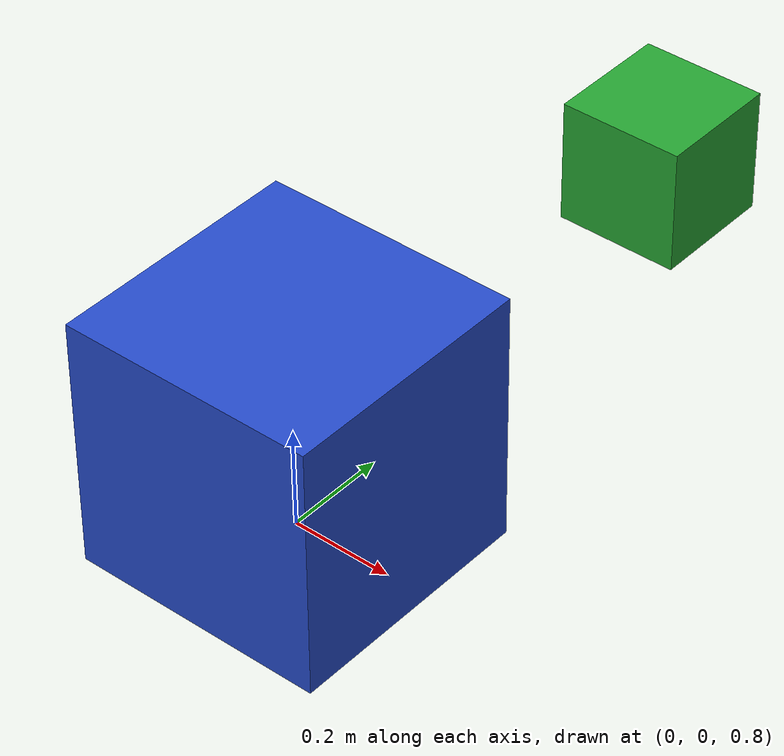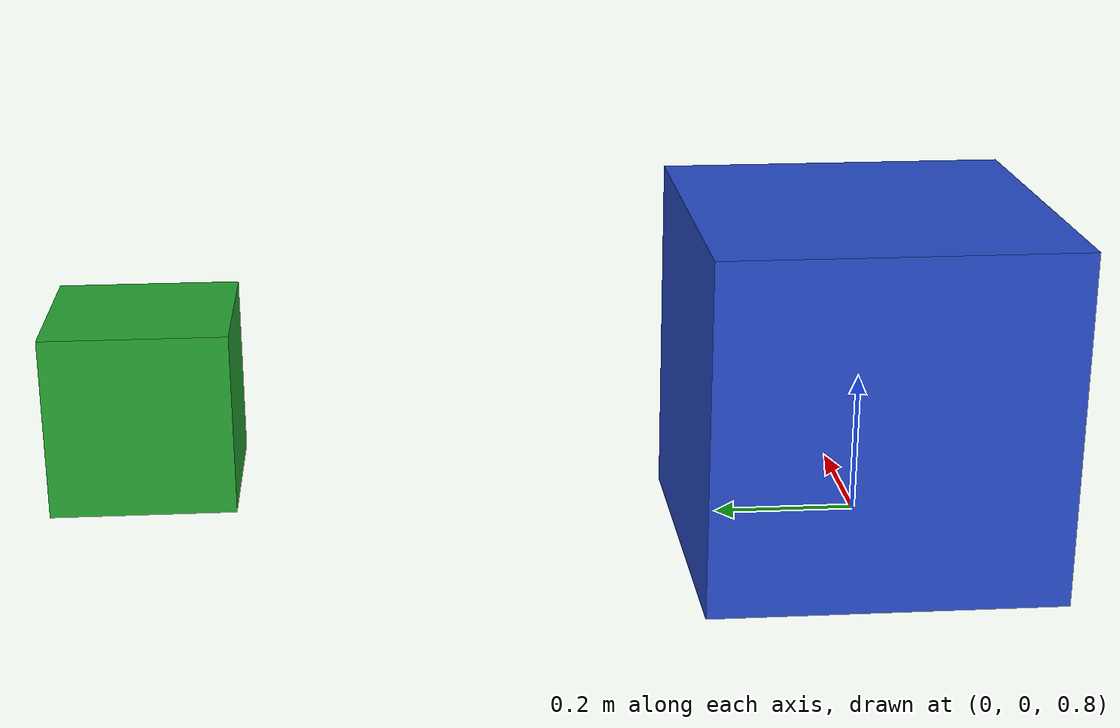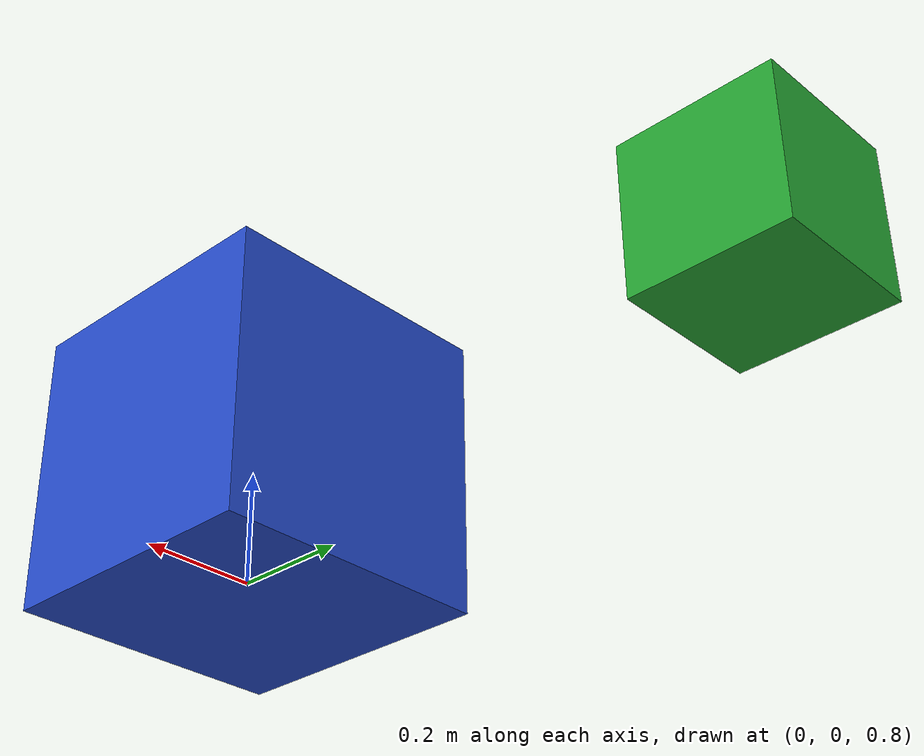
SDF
<?xml version='1.0'?>
<sdf version='1.6'>
  <model name='primitive_object'>
      <pose>0.0 0.0 1 0 0 0</pose>
      <link name='base_link'>
        <inertial>
          <mass>0.1</mass>
          <inertia>
            <ixx>0.1</ixx>
            <ixy>0</ixy>
            <ixz>0</ixz>
            <iyy>0.1</iyy>
            <iyz>0</iyz>
            <izz>0.1</izz>
          </inertia>
          <pose>0 0 0 0 -0 0</pose>
        </inertial>
        <collision name='collision'>
          <geometry>
            <box>
              <size>0.5 0.5 0.5</size>
            </box>
          </geometry>
          <max_contacts>10</max_contacts>
          <surface>
            <contact>
              <ode/>
            </contact>
            <bounce/>
            <friction>
              <torsional>
                <ode/>
              </torsional>
              <ode/>
            </friction>
          </surface>
        </collision>
        <visual name='visual'>
          <geometry>
            <box>
              <size>0.5 0.5 0.5</size>
            </box>
          </geometry>
          <material>
            <script>
              <name>Gazebo/Blue</name>
              <uri>file://media/materials/scripts/gazebo.material</uri>
            </script>
          </material>
        </visual>
        <self_collide>0</self_collide>
        <enable_gravity>1</enable_gravity>
        <kinematic>0</kinematic>
      </link>
      <link name='side_link'>
        <pose>0 1 0 0 0 0</pose>
        <inertial>
          <mass>1e-9</mass>
          <inertia>
            <ixx>1e-9</ixx>
            <ixy>0</ixy>
            <ixz>0</ixz>
            <iyy>1e-9</iyy>
            <iyz>0</iyz>
            <izz>1e-9</izz>
          </inertia>
        </inertial>
        <collision name='collision'>
          <geometry>
            <box>
              <size>0.25 0.25 0.25</size>
            </box>
          </geometry>
        </collision>
        <visual name='visual'>
          <geometry>
            <box>
              <size>0.25 0.25 0.25</size>
            </box>
          </geometry>
          <material>
            <script>
              <name>Gazebo/Green</name>
              <uri>file://media/materials/scripts/gazebo.material</uri>
            </script>
          </material>
        </visual>
      </link>
      <joint name='side_joint' type='fixed'>
        <child>side_link</child>
        <parent>base_link</parent>
      </joint>
      <static>false</static>
      <plugin name='basic_object_imu_plugin' filename='libgymfc_gazebo_imu_plugin.so'>
        <robotNamespace></robotNamespace>
        <linkName>base_link</linkName>
        <imuTopic>/imu</imuTopic>
        <gyroscopeNoiseDensity>0.00018665</gyroscopeNoiseDensity>
        <gyroscopeRandomWalk>3.8785e-05</gyroscopeRandomWalk>
        <gyroscopeBiasCorrelationTime>1000.0</gyroscopeBiasCorrelationTime>
        <gyroscopeTurnOnBiasSigma>0.0087</gyroscopeTurnOnBiasSigma>
        <accelerometerNoiseDensity>0.00186</accelerometerNoiseDensity>
        <accelerometerRandomWalk>0.006</accelerometerRandomWalk>
        <accelerometerBiasCorrelationTime>300.0</accelerometerBiasCorrelationTime>
        <accelerometerTurnOnBiasSigma>0.196</accelerometerTurnOnBiasSigma>
      </plugin>
      <plugin name='basic_object_groundtruth_plugin' filename='libgymfc_gazebo_groundtruth_plugin.so'>
        <robotNamespace/>
      </plugin>
        <plugin name="config" filename="libAircraftConfigPlugin.so">
            <motorCount>0</motorCount>
            <!-- Where is the center of thrust in relation to this specified link -->
            <centerOfThrust>
                <link>base_link</link>
                <offset>0 0 0</offset>
            </centerOfThrust>
            <sensors>
             <sensor type="imu"/>
             <sensor type="groundtruth"/>
            </sensors>
        </plugin>
  </model>
</sdf>
